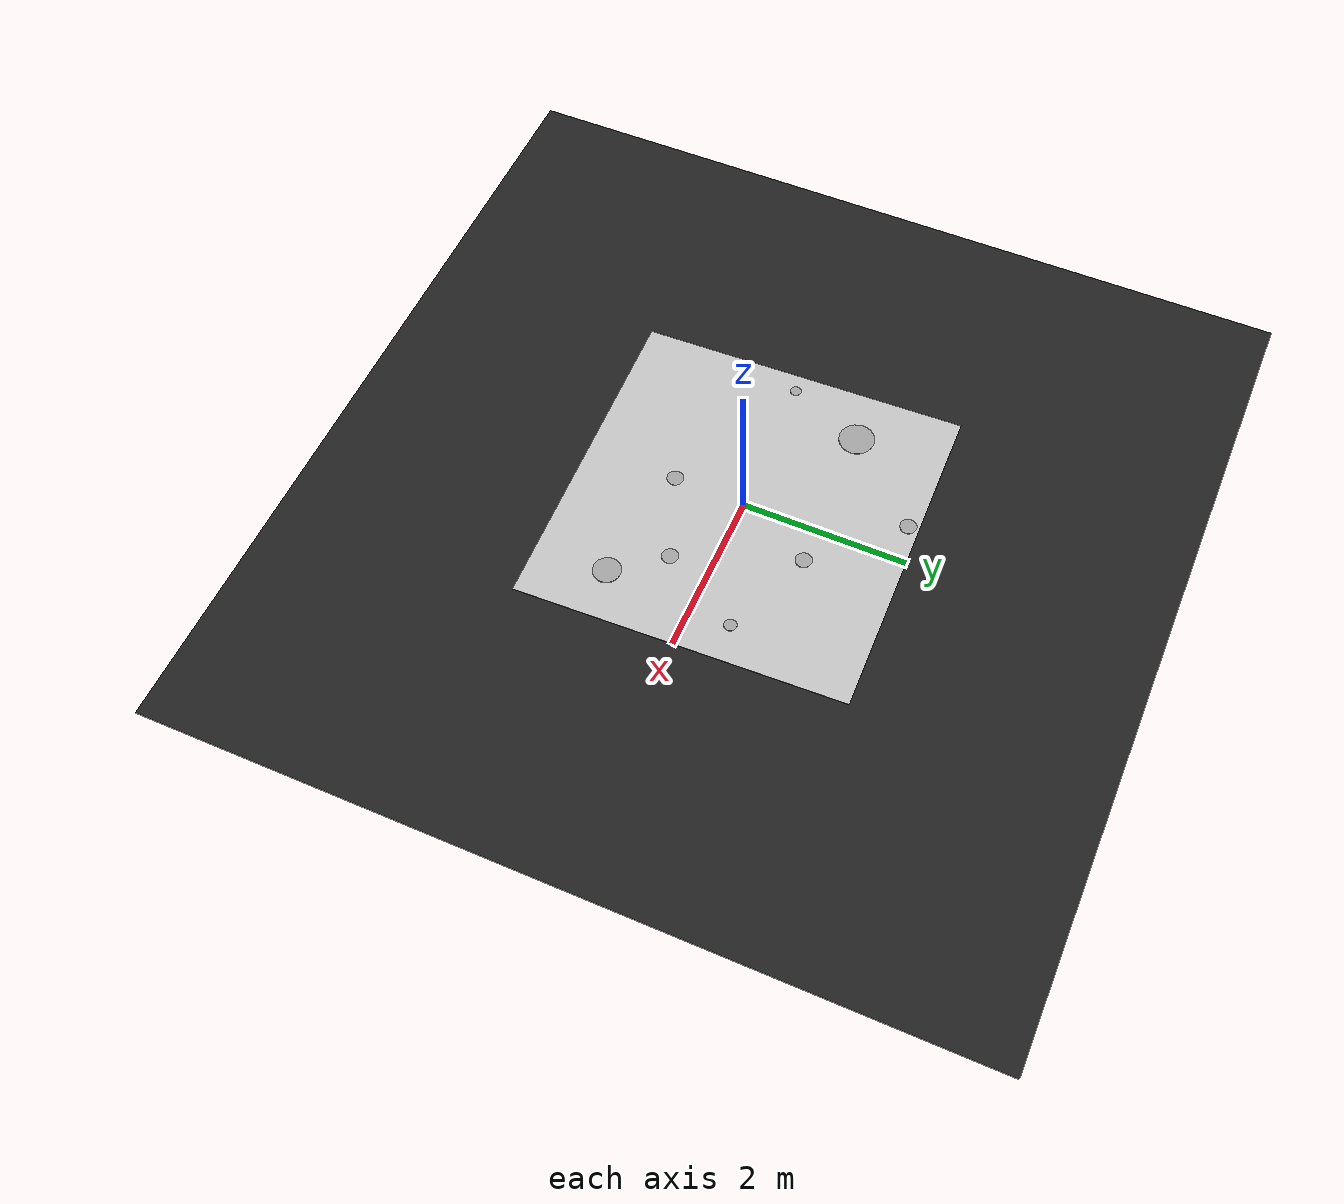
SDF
<sdf version="1.6">
 <world name="default">
  <scene>
   <ambient>0 0 0 1</ambient>
   <shadows>0</shadows>
   <grid>0</grid>
   <background>0.7 0.7 0.7 1</background>
  </scene>
  <model name="course">
   <static>1</static>
   <link name="course_link">
    <collision name="course_collision">
     <geometry><plane><normal>0 0 1</normal><size>4 4</size></plane></geometry>
     <surface><friction><ode><mu>100</mu><mu2>50</mu2></ode></friction></surface>
    </collision>
    <visual name="course_visual">
     <cast_shadows>0</cast_shadows>
     <geometry><plane><normal>0 0 1</normal><size>4 4</size></plane></geometry>
     <material>
      <script>
       <uri>model://turtlebot3_autorace/course/materials/scripts</uri>
       <uri>model://turtlebot3_autorace/course/materials/textures</uri>
       <name>course</name>
      </script>
     </material>
    </visual>
   </link>
   <pose>0 0 0 0 0 -1.54</pose>
  </model>
  <light name="sun" type="directional">
   <pose>0 0 10 0 -0 0</pose>
   <diffuse>0.8 0.8 0.8 1</diffuse>
   <specular>0.1 0.1 0.1 1</specular>
   <attenuation>
    <range>1000</range>
    <constant>0.9</constant>
    <linear>0.01</linear>
    <quadratic>0.001</quadratic>
   </attenuation>
   <direction>-0.5 0.5 -1</direction>
  </light>
  <model name="ground2">
   <pose>0 0 -0.1 0 -0 0</pose>
   <static>1</static>
   <link name="ground">
    <collision name="ground_coll"><geometry><box><size>8 8 0.01</size></box></geometry></collision>
    <visual name="ground_vis">
     <geometry><box><size>10 10 0.01</size></box></geometry>
     <material>
      <script><uri>file://media/materials/scripts/gazebo.material</uri><name>Gazebo/FlatBlack</name></script>
     </material>
    </visual>
   </link>
  </model>
  <gravity>0 0 -9.8</gravity>
  <magnetic_field>6e-06 2.3e-05 -4.2e-05</magnetic_field>
  <atmosphere type="adiabatic"/>
  <physics name="default_physics" default="0" type="ode">
   <max_step_size>0.001</max_step_size>
   <real_time_factor>1</real_time_factor>
   <real_time_update_rate>1000</real_time_update_rate>
  </physics>
  <spherical_coordinates>
   <surface_model>EARTH_WGS84</surface_model>
   <latitude_deg>0</latitude_deg>
   <longitude_deg>0</longitude_deg>
   <elevation>0</elevation>
   <heading_deg>0</heading_deg>
  </spherical_coordinates>
  <light name="user_point_light_2" type="point">
   <pose>-0.948146 0.604519 1 0 -0 0</pose>
   <diffuse>0.5 0.5 0.5 1</diffuse>
   <specular>0.1 0.1 0.1 1</specular>
   <attenuation>
    <range>20</range>
    <constant>0.5</constant>
    <linear>0.01</linear>
    <quadratic>0.001</quadratic>
   </attenuation>
   <cast_shadows>0</cast_shadows>
   <direction>0 0 -1</direction>
  </light>
  <light name="user_point_light_6" type="point">
   <pose>1.63854 1.69565 1 0 -0 0</pose>
   <diffuse>0.5 0.5 0.5 1</diffuse>
   <specular>0.1 0.1 0.1 1</specular>
   <attenuation>
    <range>20</range>
    <constant>0.5</constant>
    <linear>0.01</linear>
    <quadratic>0.001</quadratic>
   </attenuation>
   <cast_shadows>0</cast_shadows>
   <direction>0 0 -1</direction>
  </light>
  <light name="user_point_light_7" type="point">
   <pose>0.42 -3.31 1 0 -0 0</pose>
   <diffuse>0.5 0.5 0.5 1</diffuse>
   <specular>0.1 0.1 0.1 1</specular>
   <attenuation>
    <range>20</range>
    <constant>0.5</constant>
    <linear>0.01</linear>
    <quadratic>0.001</quadratic>
   </attenuation>
   <cast_shadows>0</cast_shadows>
   <direction>0 0 -1</direction>
  </light>
  <light name="user_point_light_8" type="point">
   <pose>-1.8 1.5 1 0 -0 0</pose>
   <diffuse>0.5 0.5 0.5 1</diffuse>
   <specular>0.1 0.1 0.1 1</specular>
   <attenuation>
    <range>20</range>
    <constant>0.5</constant>
    <linear>0.01</linear>
    <quadratic>0.001</quadratic>
   </attenuation>
   <cast_shadows>0</cast_shadows>
   <direction>0 0 -1</direction>
  </light>
  <audio><device>default</device></audio>
  <model name="white_circle">
   <link name="link">
    <inertial>
     <mass>1</mass>
     <inertia><ixx>0.145833</ixx><ixy>0</ixy><ixz>0</ixz><iyy>0.145833</iyy><iyz>0</iyz><izz>0.125</izz></inertia>
    </inertial>
    <visual name="visual">
     <geometry><cylinder><radius>0.075571</radius><length>0.01</length></cylinder></geometry>
     <material>
      <script><name>Gazebo/Grey</name><uri>file://media/materials/scripts/gazebo.material</uri></script>
      <shader type="vertex"><normal_map>__default__</normal_map></shader>
      <ambient>0.3 0.3 0.3 1</ambient>
      <diffuse>0.7 0.7 0.7 1</diffuse>
      <specular>0.01 0.01 0.01 1</specular>
      <emissive>0 0 0 1</emissive>
     </material>
    </visual>
    <collision name="collision">
     <geometry><cylinder><radius>0.075571</radius><length>0.01</length></cylinder></geometry>
     <surface>
      <friction>
       <ode><mu>1</mu><mu2>1</mu2><fdir1>0 0 0</fdir1><slip1>0</slip1><slip2>0</slip2></ode>
       <torsional>
        <coefficient>1</coefficient>
        <patch_radius>0</patch_radius>
        <surface_radius>0</surface_radius>
        <use_patch_radius>1</use_patch_radius>
        <ode><slip>0</slip></ode>
       </torsional>
      </friction>
      <bounce><restitution_coefficient>0</restitution_coefficient><threshold>1e+06</threshold></bounce>
      <contact>
       <collide_without_contact>0</collide_without_contact>
       <collide_without_contact_bitmask>1</collide_without_contact_bitmask>
       <collide_bitmask>1</collide_bitmask>
       <ode>
        <soft_cfm>0</soft_cfm>
        <soft_erp>0.2</soft_erp>
        <kp>1e+13</kp>
        <kd>1</kd>
        <max_vel>0.01</max_vel>
        <min_depth>0</min_depth>
       </ode>
       <bullet>
        <split_impulse>1</split_impulse>
        <split_impulse_penetration_threshold>-0.01</split_impulse_penetration_threshold>
        <soft_cfm>0</soft_cfm>
        <soft_erp>0.2</soft_erp>
        <kp>1e+13</kp>
        <kd>1</kd>
       </bullet>
      </contact>
     </surface>
    </collision>
   </link>
   <static>0</static>
   <pose>1.53553 0.494282 0.005 0 -0 0</pose>
  </model>
  <model name="white_circle_0">
   <link name="link">
    <inertial>
     <mass>1</mass>
     <inertia><ixx>0.145833</ixx><ixy>0</ixy><ixz>0</ixz><iyy>0.145833</iyy><iyz>0</iyz><izz>0.125</izz></inertia>
    </inertial>
    <visual name="visual">
     <geometry><cylinder><radius>0.166395</radius><length>0.01</length></cylinder></geometry>
     <material>
      <script><name>Gazebo/Grey</name><uri>file://media/materials/scripts/gazebo.material</uri></script>
      <shader type="vertex"><normal_map>__default__</normal_map></shader>
      <ambient>0.3 0.3 0.3 1</ambient>
      <diffuse>0.7 0.7 0.7 1</diffuse>
      <specular>0.01 0.01 0.01 1</specular>
      <emissive>0 0 0 1</emissive>
     </material>
    </visual>
    <collision name="collision">
     <geometry><cylinder><radius>0.166395</radius><length>0.01</length></cylinder></geometry>
     <surface>
      <friction>
       <ode><mu>1</mu><mu2>1</mu2><fdir1>0 0 0</fdir1><slip1>0</slip1><slip2>0</slip2></ode>
       <torsional>
        <coefficient>1</coefficient>
        <patch_radius>0</patch_radius>
        <surface_radius>0</surface_radius>
        <use_patch_radius>1</use_patch_radius>
        <ode><slip>0</slip></ode>
       </torsional>
      </friction>
      <bounce><restitution_coefficient>0</restitution_coefficient><threshold>1e+06</threshold></bounce>
      <contact>
       <collide_without_contact>0</collide_without_contact>
       <collide_without_contact_bitmask>1</collide_without_contact_bitmask>
       <collide_bitmask>1</collide_bitmask>
       <ode>
        <soft_cfm>0</soft_cfm>
        <soft_erp>0.2</soft_erp>
        <kp>1e+13</kp>
        <kd>1</kd>
        <max_vel>0.01</max_vel>
        <min_depth>0</min_depth>
       </ode>
       <bullet>
        <split_impulse>1</split_impulse>
        <split_impulse_penetration_threshold>-0.01</split_impulse_penetration_threshold>
        <soft_cfm>0</soft_cfm>
        <soft_erp>0.2</soft_erp>
        <kp>1e+13</kp>
        <kd>1</kd>
       </bullet>
      </contact>
     </surface>
    </collision>
   </link>
   <static>0</static>
   <pose>1.42412 -1.07003 0.005 0 -0 0</pose>
  </model>
  <model name="white_circle_1">
   <link name="link">
    <inertial>
     <mass>1</mass>
     <inertia><ixx>0.145833</ixx><ixy>0</ixy><ixz>0</ixz><iyy>0.145833</iyy><iyz>0</iyz><izz>0.125</izz></inertia>
    </inertial>
    <visual name="visual">
     <geometry><cylinder><radius>0.1</radius><length>0.01</length></cylinder></geometry>
     <material>
      <script><name>Gazebo/Grey</name><uri>file://media/materials/scripts/gazebo.material</uri></script>
      <shader type="vertex"><normal_map>__default__</normal_map></shader>
      <ambient>0.3 0.3 0.3 1</ambient>
      <diffuse>0.7 0.7 0.7 1</diffuse>
      <specular>0.01 0.01 0.01 1</specular>
      <emissive>0 0 0 1</emissive>
     </material>
    </visual>
    <collision name="collision">
     <geometry><cylinder><radius>0.1</radius><length>0.01</length></cylinder></geometry>
     <surface>
      <friction>
       <ode><mu>1</mu><mu2>1</mu2><fdir1>0 0 0</fdir1><slip1>0</slip1><slip2>0</slip2></ode>
       <torsional>
        <coefficient>1</coefficient>
        <patch_radius>0</patch_radius>
        <surface_radius>0</surface_radius>
        <use_patch_radius>1</use_patch_radius>
        <ode><slip>0</slip></ode>
       </torsional>
      </friction>
      <bounce><restitution_coefficient>0</restitution_coefficient><threshold>1e+06</threshold></bounce>
      <contact>
       <collide_without_contact>0</collide_without_contact>
       <collide_without_contact_bitmask>1</collide_without_contact_bitmask>
       <collide_bitmask>1</collide_bitmask>
       <ode>
        <soft_cfm>0</soft_cfm>
        <soft_erp>0.2</soft_erp>
        <kp>1e+13</kp>
        <kd>1</kd>
        <max_vel>0.01</max_vel>
        <min_depth>0</min_depth>
       </ode>
       <bullet>
        <split_impulse>1</split_impulse>
        <split_impulse_penetration_threshold>-0.01</split_impulse_penetration_threshold>
        <soft_cfm>0</soft_cfm>
        <soft_erp>0.2</soft_erp>
        <kp>1e+13</kp>
        <kd>1</kd>
       </bullet>
      </contact>
     </surface>
    </collision>
   </link>
   <static>0</static>
   <pose>-0.03228 -0.882471 0 0 -0 0</pose>
  </model>
  <model name="white_circle_2">
   <link name="link">
    <inertial>
     <mass>1</mass>
     <inertia><ixx>0.145833</ixx><ixy>0</ixy><ixz>0</ixz><iyy>0.145833</iyy><iyz>0</iyz><izz>0.125</izz></inertia>
    </inertial>
    <visual name="visual">
     <geometry><cylinder><radius>0.1</radius><length>0.01</length></cylinder></geometry>
     <material>
      <script><name>Gazebo/Grey</name><uri>file://media/materials/scripts/gazebo.material</uri></script>
      <shader type="vertex"><normal_map>__default__</normal_map></shader>
      <ambient>0.3 0.3 0.3 1</ambient>
      <diffuse>0.7 0.7 0.7 1</diffuse>
      <specular>0.01 0.01 0.01 1</specular>
      <emissive>0 0 0 1</emissive>
     </material>
    </visual>
    <collision name="collision">
     <geometry><cylinder><radius>0.1</radius><length>0.01</length></cylinder></geometry>
     <surface>
      <friction>
       <ode><mu>1</mu><mu2>1</mu2><fdir1>0 0 0</fdir1><slip1>0</slip1><slip2>0</slip2></ode>
       <torsional>
        <coefficient>1</coefficient>
        <patch_radius>0</patch_radius>
        <surface_radius>0</surface_radius>
        <use_patch_radius>1</use_patch_radius>
        <ode><slip>0</slip></ode>
       </torsional>
      </friction>
      <bounce><restitution_coefficient>0</restitution_coefficient><threshold>1e+06</threshold></bounce>
      <contact>
       <collide_without_contact>0</collide_without_contact>
       <collide_without_contact_bitmask>1</collide_without_contact_bitmask>
       <collide_bitmask>1</collide_bitmask>
       <ode>
        <soft_cfm>0</soft_cfm>
        <soft_erp>0.2</soft_erp>
        <kp>1e+13</kp>
        <kd>1</kd>
        <max_vel>0.01</max_vel>
        <min_depth>0</min_depth>
       </ode>
       <bullet>
        <split_impulse>1</split_impulse>
        <split_impulse_penetration_threshold>-0.01</split_impulse_penetration_threshold>
        <soft_cfm>0</soft_cfm>
        <soft_erp>0.2</soft_erp>
        <kp>1e+13</kp>
        <kd>1</kd>
       </bullet>
      </contact>
     </surface>
    </collision>
   </link>
   <static>0</static>
   <pose>0.972808 -0.493303 0 0 -0 0</pose>
  </model>
  <model name="white_circle_3">
   <link name="link">
    <inertial>
     <mass>1</mass>
     <inertia><ixx>0.145833</ixx><ixy>0</ixy><ixz>0</ixz><iyy>0.145833</iyy><iyz>0</iyz><izz>0.125</izz></inertia>
    </inertial>
    <visual name="visual">
     <geometry><cylinder><radius>0.1</radius><length>0.01</length></cylinder></geometry>
     <material>
      <script><name>Gazebo/Grey</name><uri>file://media/materials/scripts/gazebo.material</uri></script>
      <shader type="vertex"><normal_map>__default__</normal_map></shader>
      <ambient>0.3 0.3 0.3 1</ambient>
      <diffuse>0.7 0.7 0.7 1</diffuse>
      <specular>0.01 0.01 0.01 1</specular>
      <emissive>0 0 0 1</emissive>
     </material>
    </visual>
    <collision name="collision">
     <geometry><cylinder><radius>0.1</radius><length>0.01</length></cylinder></geometry>
     <surface>
      <friction>
       <ode><mu>1</mu><mu2>1</mu2><fdir1>0 0 0</fdir1><slip1>0</slip1><slip2>0</slip2></ode>
       <torsional>
        <coefficient>1</coefficient>
        <patch_radius>0</patch_radius>
        <surface_radius>0</surface_radius>
        <use_patch_radius>1</use_patch_radius>
        <ode><slip>0</slip></ode>
       </torsional>
      </friction>
      <bounce><restitution_coefficient>0</restitution_coefficient><threshold>1e+06</threshold></bounce>
      <contact>
       <collide_without_contact>0</collide_without_contact>
       <collide_without_contact_bitmask>1</collide_without_contact_bitmask>
       <collide_bitmask>1</collide_bitmask>
       <ode>
        <soft_cfm>0</soft_cfm>
        <soft_erp>0.2</soft_erp>
        <kp>1e+13</kp>
        <kd>1</kd>
        <max_vel>0.01</max_vel>
        <min_depth>0</min_depth>
       </ode>
       <bullet>
        <split_impulse>1</split_impulse>
        <split_impulse_penetration_threshold>-0.01</split_impulse_penetration_threshold>
        <soft_cfm>0</soft_cfm>
        <soft_erp>0.2</soft_erp>
        <kp>1e+13</kp>
        <kd>1</kd>
       </bullet>
      </contact>
     </surface>
    </collision>
   </link>
   <static>0</static>
   <pose>0.430648 0.921782 0 0 -0 0</pose>
  </model>
  <model name="white_circle_4">
   <link name="link">
    <inertial>
     <mass>1</mass>
     <inertia><ixx>0.145833</ixx><ixy>0</ixy><ixz>0</ixz><iyy>0.145833</iyy><iyz>0</iyz><izz>0.125</izz></inertia>
    </inertial>
    <visual name="visual">
     <geometry><cylinder><radius>0.1</radius><length>0.01</length></cylinder></geometry>
     <material>
      <script><name>Gazebo/Grey</name><uri>file://media/materials/scripts/gazebo.material</uri></script>
      <shader type="vertex"><normal_map>__default__</normal_map></shader>
      <ambient>0.3 0.3 0.3 1</ambient>
      <diffuse>0.7 0.7 0.7 1</diffuse>
      <specular>0.01 0.01 0.01 1</specular>
      <emissive>0 0 0 1</emissive>
     </material>
    </visual>
    <collision name="collision">
     <geometry><cylinder><radius>0.1</radius><length>0.01</length></cylinder></geometry>
     <surface>
      <friction>
       <ode><mu>1</mu><mu2>1</mu2><fdir1>0 0 0</fdir1><slip1>0</slip1><slip2>0</slip2></ode>
       <torsional>
        <coefficient>1</coefficient>
        <patch_radius>0</patch_radius>
        <surface_radius>0</surface_radius>
        <use_patch_radius>1</use_patch_radius>
        <ode><slip>0</slip></ode>
       </torsional>
      </friction>
      <bounce><restitution_coefficient>0</restitution_coefficient><threshold>1e+06</threshold></bounce>
      <contact>
       <collide_without_contact>0</collide_without_contact>
       <collide_without_contact_bitmask>1</collide_without_contact_bitmask>
       <collide_bitmask>1</collide_bitmask>
       <ode>
        <soft_cfm>0</soft_cfm>
        <soft_erp>0.2</soft_erp>
        <kp>1e+13</kp>
        <kd>1</kd>
        <max_vel>0.01</max_vel>
        <min_depth>0</min_depth>
       </ode>
       <bullet>
        <split_impulse>1</split_impulse>
        <split_impulse_penetration_threshold>-0.01</split_impulse_penetration_threshold>
        <soft_cfm>0</soft_cfm>
        <soft_erp>0.2</soft_erp>
        <kp>1e+13</kp>
        <kd>1</kd>
       </bullet>
      </contact>
     </surface>
    </collision>
   </link>
   <static>0</static>
   <pose>-0.462984 1.85566 0 0 -0 0</pose>
  </model>
  <model name="white_circle_5">
   <link name="link">
    <inertial>
     <mass>1</mass>
     <inertia><ixx>0.145833</ixx><ixy>0</ixy><ixz>0</ixz><iyy>0.145833</iyy><iyz>0</iyz><izz>0.125</izz></inertia>
    </inertial>
    <visual name="visual">
     <geometry><cylinder><radius>0.214085</radius><length>0.01</length></cylinder></geometry>
     <material>
      <script><name>Gazebo/Grey</name><uri>file://media/materials/scripts/gazebo.material</uri></script>
      <shader type="vertex"><normal_map>__default__</normal_map></shader>
      <ambient>0.3 0.3 0.3 1</ambient>
      <diffuse>0.7 0.7 0.7 1</diffuse>
      <specular>0.01 0.01 0.01 1</specular>
      <emissive>0 0 0 1</emissive>
     </material>
    </visual>
    <collision name="collision">
     <geometry><cylinder><radius>0.214085</radius><length>0.01</length></cylinder></geometry>
     <surface>
      <friction>
       <ode><mu>1</mu><mu2>1</mu2><fdir1>0 0 0</fdir1><slip1>0</slip1><slip2>0</slip2></ode>
       <torsional>
        <coefficient>1</coefficient>
        <patch_radius>0</patch_radius>
        <surface_radius>0</surface_radius>
        <use_patch_radius>1</use_patch_radius>
        <ode><slip>0</slip></ode>
       </torsional>
      </friction>
      <bounce><restitution_coefficient>0</restitution_coefficient><threshold>1e+06</threshold></bounce>
      <contact>
       <collide_without_contact>0</collide_without_contact>
       <collide_without_contact_bitmask>1</collide_without_contact_bitmask>
       <collide_bitmask>1</collide_bitmask>
       <ode>
        <soft_cfm>0</soft_cfm>
        <soft_erp>0.2</soft_erp>
        <kp>1e+13</kp>
        <kd>1</kd>
        <max_vel>0.01</max_vel>
        <min_depth>0</min_depth>
       </ode>
       <bullet>
        <split_impulse>1</split_impulse>
        <split_impulse_penetration_threshold>-0.01</split_impulse_penetration_threshold>
        <soft_cfm>0</soft_cfm>
        <soft_erp>0.2</soft_erp>
        <kp>1e+13</kp>
        <kd>1</kd>
       </bullet>
      </contact>
     </surface>
    </collision>
   </link>
   <static>0</static>
   <pose>-1.38625 0.865295 0 0 -0 0</pose>
  </model>
  <model name="white_circle_6">
   <link name="link">
    <inertial>
     <mass>1</mass>
     <inertia><ixx>0.145833</ixx><ixy>0</ixy><ixz>0</ixz><iyy>0.145833</iyy><iyz>0</iyz><izz>0.125</izz></inertia>
    </inertial>
    <visual name="visual">
     <geometry><cylinder><radius>0.066886</radius><length>0.01</length></cylinder></geometry>
     <material>
      <script><name>Gazebo/Grey</name><uri>file://media/materials/scripts/gazebo.material</uri></script>
      <shader type="vertex"><normal_map>__default__</normal_map></shader>
      <ambient>0.3 0.3 0.3 1</ambient>
      <diffuse>0.7 0.7 0.7 1</diffuse>
      <specular>0.01 0.01 0.01 1</specular>
      <emissive>0 0 0 1</emissive>
     </material>
    </visual>
    <collision name="collision">
     <geometry><cylinder><radius>0.066886</radius><length>0.01</length></cylinder></geometry>
     <surface>
      <friction>
       <ode><mu>1</mu><mu2>1</mu2><fdir1>0 0 0</fdir1><slip1>0</slip1><slip2>0</slip2></ode>
       <torsional>
        <coefficient>1</coefficient>
        <patch_radius>0</patch_radius>
        <surface_radius>0</surface_radius>
        <use_patch_radius>1</use_patch_radius>
        <ode><slip>0</slip></ode>
       </torsional>
      </friction>
      <bounce><restitution_coefficient>0</restitution_coefficient><threshold>1e+06</threshold></bounce>
      <contact>
       <collide_without_contact>0</collide_without_contact>
       <collide_without_contact_bitmask>1</collide_without_contact_bitmask>
       <collide_bitmask>1</collide_bitmask>
       <ode>
        <soft_cfm>0</soft_cfm>
        <soft_erp>0.2</soft_erp>
        <kp>1e+13</kp>
        <kd>1</kd>
        <max_vel>0.01</max_vel>
        <min_depth>0</min_depth>
       </ode>
       <bullet>
        <split_impulse>1</split_impulse>
        <split_impulse_penetration_threshold>-0.01</split_impulse_penetration_threshold>
        <soft_cfm>0</soft_cfm>
        <soft_erp>0.2</soft_erp>
        <kp>1e+13</kp>
        <kd>1</kd>
       </bullet>
      </contact>
     </surface>
    </collision>
   </link>
   <static>0</static>
   <pose>-1.77021 -0.069624 0 0 -0 0</pose>
  </model>
 </world>
</sdf>
